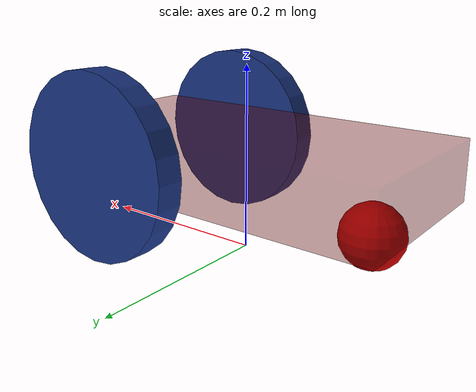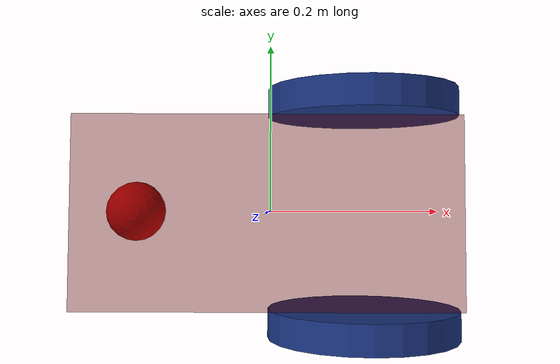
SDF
<?xml version='1.0'?>
<sdf version='1.6'>
  <model name='r2d2'>
    <link name='chassis'>
      <pose frame=''>0 -0 0.1 0 -0 0</pose>
      <inertial>
        <inertia>
          <ixx>0</ixx>
          <ixy>0</ixy>
          <ixz>0</ixz>
          <iyy>0</iyy>
          <iyz>0</iyz>
          <izz>0</izz>
        </inertia>
        <mass>0.641471</mass>
        <pose frame=''>0 0 0 0 -0 0</pose>
      </inertial>
      <self_collide>0</self_collide>
      <kinematic>0</kinematic>
      <gravity>1</gravity>
      <visual name='visual'>
        <geometry>
          <box>
            <size>0.4 0.2 0.066426</size>
          </box>
        </geometry>
        <pose frame=''>0 0 0 0 -0 0</pose>
        <cast_shadows>1</cast_shadows>
        <transparency>0</transparency>
        <material>
          <ambient>0.4 0 0 0.4</ambient>
          <diffuse>0.4 0 0 0.4</diffuse>
          <specular>0.4 0 0 0.4</specular>
          <emissive>0.4 0 0 0.4</emissive>
          <script>
            <name>ModelPreview_1::chassis::visual_MATERIAL_</name>
            <uri>__default__</uri>
          </script>
          <shader type='vertex'>
            <normal_map>__default__</normal_map>
          </shader>
        </material>
      </visual>
      <visual name='caster_visual'>
        <pose frame=''>-0.15 0 -0.05 0 -0 0</pose>
        <geometry>
          <sphere>
            <radius>0.0332131</radius>
          </sphere>
        </geometry>
        <cast_shadows>1</cast_shadows>
        <transparency>0</transparency>
        <material>
          <shader type='vertex'>
            <normal_map>__default__</normal_map>
          </shader>
          <ambient>0.8 0 0 0</ambient>
          <diffuse>0.8 0 0 0</diffuse>
          <specular>0.8 0 0 0</specular>
          <emissive>0.8 0 0 0</emissive>
          <script>
            <name>ModelPreview_4::chassis::caster_visual_MATERIAL_</name>
          </script>
        </material>
      </visual>
      <collision name='collision'>
        <laser_retro>0</laser_retro>
        <max_contacts>10</max_contacts>
        <pose frame=''>0 0 0 0 -0 0</pose>
        <geometry>
          <box>
            <size>0.4 0.2 0.066426</size>
          </box>
        </geometry>
        <surface>
          <friction>
            <ode>
              <mu>1</mu>
              <mu2>1</mu2>
              <fdir1>0 0 0</fdir1>
              <slip1>0</slip1>
              <slip2>0</slip2>
            </ode>
            <torsional>
              <coefficient>1</coefficient>
              <patch_radius>0</patch_radius>
              <surface_radius>0</surface_radius>
              <use_patch_radius>1</use_patch_radius>
              <ode>
                <slip>0</slip>
              </ode>
            </torsional>
          </friction>
          <bounce>
            <restitution_coefficient>0</restitution_coefficient>
            <threshold>1e+06</threshold>
          </bounce>
          <contact>
            <collide_without_contact>0</collide_without_contact>
            <collide_without_contact_bitmask>1</collide_without_contact_bitmask>
            <collide_bitmask>1</collide_bitmask>
            <ode>
              <soft_cfm>0</soft_cfm>
              <soft_erp>0.2</soft_erp>
              <kp>1e+13</kp>
              <kd>1</kd>
              <max_vel>0.01</max_vel>
              <min_depth>0</min_depth>
            </ode>
            <bullet>
              <split_impulse>1</split_impulse>
              <split_impulse_penetration_threshold>-0.01</split_impulse_penetration_threshold>
              <soft_cfm>0</soft_cfm>
              <soft_erp>0.2</soft_erp>
              <kp>1e+13</kp>
              <kd>1</kd>
            </bullet>
          </contact>
        </surface>
      </collision>
      <collision name='caster_collision'>
        <laser_retro>0</laser_retro>
        <max_contacts>10</max_contacts>
        <pose frame=''>-0.15 0 -0.05 0 -0 0</pose>
        <geometry>
          <sphere>
            <radius>0.033213</radius>
          </sphere>
        </geometry>
        <surface>
          <friction>
            <ode>
              <mu>0</mu>
              <mu2>0</mu2>
              <fdir1>0 0 0</fdir1>
              <slip1>1</slip1>
              <slip2>1</slip2>
            </ode>
            <torsional>
              <coefficient>1</coefficient>
              <patch_radius>0</patch_radius>
              <surface_radius>0</surface_radius>
              <use_patch_radius>1</use_patch_radius>
              <ode>
                <slip>0</slip>
              </ode>
            </torsional>
          </friction>
          <bounce>
            <restitution_coefficient>0</restitution_coefficient>
            <threshold>1e+06</threshold>
          </bounce>
          <contact>
            <collide_without_contact>0</collide_without_contact>
            <collide_without_contact_bitmask>1</collide_without_contact_bitmask>
            <collide_bitmask>1</collide_bitmask>
            <ode>
              <soft_cfm>0</soft_cfm>
              <soft_erp>0.2</soft_erp>
              <kp>1e+13</kp>
              <kd>1</kd>
              <max_vel>0.01</max_vel>
              <min_depth>0</min_depth>
            </ode>
            <bullet>
              <split_impulse>1</split_impulse>
              <split_impulse_penetration_threshold>-0.01</split_impulse_penetration_threshold>
              <soft_cfm>0</soft_cfm>
              <soft_erp>0.2</soft_erp>
              <kp>1e+13</kp>
              <kd>1</kd>
            </bullet>
          </contact>
        </surface>
      </collision>
    </link>
    <link name='left_wheel'>
      <pose frame=''>0.1 0.115 0.1 -0.00333 1.5707 1.56736</pose>
      <inertial>
        <inertia>
          <ixx>1</ixx>
          <ixy>0</ixy>
          <ixz>0</ixz>
          <iyy>1</iyy>
          <iyz>0</iyz>
          <izz>1</izz>
        </inertia>
        <mass>1</mass>
        <pose frame=''>0 0 0 0 -0 0</pose>
      </inertial>
      <self_collide>0</self_collide>
      <kinematic>0</kinematic>
      <visual name='visual_lw'>
        <geometry>
          <cylinder>
            <radius>0.1</radius>
            <length>0.03</length>
          </cylinder>
        </geometry>
        <pose frame=''>0 0 0 0 -0 0</pose>
        <cast_shadows>1</cast_shadows>
        <transparency>0</transparency>
        <material>
          <ambient>0.1 0.2 0.5 0</ambient>
          <diffuse>0.1 0.2 0.5 0</diffuse>
          <specular>0.1 0.2 0.5 0</specular>
          <emissive>0 0 0 1</emissive>
          <script>
            <name>ModelPreview_1::left_wheel::visual_lw_MATERIAL_</name>
            <uri>__default__</uri>
          </script>
          <shader type='vertex'>
            <normal_map>__default__</normal_map>
          </shader>
        </material>
      </visual>
      <collision name='collision_lw'>
        <laser_retro>0</laser_retro>
        <max_contacts>10</max_contacts>
        <pose frame=''>0 0 0 0 -0 0</pose>
        <geometry>
          <cylinder>
            <radius>0.1</radius>
            <length>0.03</length>
          </cylinder>
        </geometry>
        <surface>
          <friction>
            <ode>
              <mu>1</mu>
              <mu2>1</mu2>
              <fdir1>0 0 0</fdir1>
              <slip1>0</slip1>
              <slip2>0</slip2>
            </ode>
            <torsional>
              <coefficient>1</coefficient>
              <patch_radius>0</patch_radius>
              <surface_radius>0</surface_radius>
              <use_patch_radius>1</use_patch_radius>
              <ode>
                <slip>0</slip>
              </ode>
            </torsional>
          </friction>
          <bounce>
            <restitution_coefficient>0</restitution_coefficient>
            <threshold>1e+06</threshold>
          </bounce>
          <contact>
            <collide_without_contact>0</collide_without_contact>
            <collide_without_contact_bitmask>1</collide_without_contact_bitmask>
            <collide_bitmask>1</collide_bitmask>
            <ode>
              <soft_cfm>0</soft_cfm>
              <soft_erp>0.2</soft_erp>
              <kp>1e+13</kp>
              <kd>1</kd>
              <max_vel>0.01</max_vel>
              <min_depth>0</min_depth>
            </ode>
            <bullet>
              <split_impulse>1</split_impulse>
              <split_impulse_penetration_threshold>-0.01</split_impulse_penetration_threshold>
              <soft_cfm>0</soft_cfm>
              <soft_erp>0.2</soft_erp>
              <kp>1e+13</kp>
              <kd>1</kd>
            </bullet>
          </contact>
        </surface>
      </collision>
    </link>
    <link name='right_wheel'>
      <pose frame=''>0.1 -0.115 0.1 -0.004565 1.5707 1.56612</pose>
      <inertial>
        <inertia>
          <ixx>1</ixx>
          <ixy>0</ixy>
          <ixz>0</ixz>
          <iyy>1</iyy>
          <iyz>0</iyz>
          <izz>1</izz>
        </inertia>
        <mass>1</mass>
        <pose frame=''>0 0 0 0 -0 0</pose>
      </inertial>
      <self_collide>0</self_collide>
      <kinematic>0</kinematic>
      <visual name='visual_rw'>
        <geometry>
          <cylinder>
            <radius>0.1</radius>
            <length>0.03</length>
          </cylinder>
        </geometry>
        <pose frame=''>0 0 0 0 -0 0</pose>
        <cast_shadows>1</cast_shadows>
        <transparency>0</transparency>
        <material>
          <ambient>0.1 0.2 0.5 0</ambient>
          <diffuse>0.1 0.2 0.5 0</diffuse>
          <specular>0.1 0.2 0.5 0</specular>
          <emissive>0 0 0 1</emissive>
          <script>
            <name>ModelPreview_1::right_wheel::visual_rw_MATERIAL_</name>
            <uri>__default__</uri>
          </script>
          <shader type='vertex'>
            <normal_map>__default__</normal_map>
          </shader>
        </material>
      </visual>
      <collision name='collision_rw'>
        <laser_retro>0</laser_retro>
        <max_contacts>10</max_contacts>
        <pose frame=''>0 0 0 0 -0 0</pose>
        <geometry>
          <cylinder>
            <radius>0.1</radius>
            <length>0.03</length>
          </cylinder>
        </geometry>
        <surface>
          <friction>
            <ode>
              <mu>1</mu>
              <mu2>1</mu2>
              <fdir1>0 0 0</fdir1>
              <slip1>0</slip1>
              <slip2>0</slip2>
            </ode>
            <torsional>
              <coefficient>1</coefficient>
              <patch_radius>0</patch_radius>
              <surface_radius>0</surface_radius>
              <use_patch_radius>1</use_patch_radius>
              <ode>
                <slip>0</slip>
              </ode>
            </torsional>
          </friction>
          <bounce>
            <restitution_coefficient>0</restitution_coefficient>
            <threshold>1e+06</threshold>
          </bounce>
          <contact>
            <collide_without_contact>0</collide_without_contact>
            <collide_without_contact_bitmask>1</collide_without_contact_bitmask>
            <collide_bitmask>1</collide_bitmask>
            <ode>
              <soft_cfm>0</soft_cfm>
              <soft_erp>0.2</soft_erp>
              <kp>1e+13</kp>
              <kd>1</kd>
              <max_vel>0.01</max_vel>
              <min_depth>0</min_depth>
            </ode>
            <bullet>
              <split_impulse>1</split_impulse>
              <split_impulse_penetration_threshold>-0.01</split_impulse_penetration_threshold>
              <soft_cfm>0</soft_cfm>
              <soft_erp>0.2</soft_erp>
              <kp>1e+13</kp>
              <kd>1</kd>
            </bullet>
          </contact>
        </surface>
      </collision>
    </link>
    <joint name='lw_hinge' type='revolute'>
      <parent>chassis</parent>
      <child>left_wheel</child>
      <pose frame=''>0 0 -0.03 0 -0 0</pose>
      <axis>
        <xyz>0 1 0</xyz>
        <use_parent_model_frame>0</use_parent_model_frame>
        <limit>
          <lower>-1e+16</lower>
          <upper>1e+16</upper>
          <effort>-1</effort>
          <velocity>-1</velocity>
        </limit>
        <dynamics>
          <spring_reference>0</spring_reference>
          <spring_stiffness>0</spring_stiffness>
          <damping>0</damping>
          <friction>0</friction>
        </dynamics>
      </axis>
      <physics>
        <ode>
          <limit>
            <cfm>0</cfm>
            <erp>0.2</erp>
          </limit>
          <suspension>
            <cfm>0</cfm>
            <erp>0.2</erp>
          </suspension>
        </ode>
      </physics>
    </joint>
    <joint name='rw_hinge' type='revolute'>
      <parent>chassis</parent>
      <child>right_wheel</child>
      <pose frame=''>0 0 0.03 0 -0 0</pose>
      <axis>
        <xyz>0 1 0</xyz>
        <use_parent_model_frame>0</use_parent_model_frame>
        <limit>
          <lower>-1e+16</lower>
          <upper>1e+16</upper>
          <effort>-1</effort>
          <velocity>-1</velocity>
        </limit>
        <dynamics>
          <spring_reference>0</spring_reference>
          <spring_stiffness>0</spring_stiffness>
          <damping>0</damping>
          <friction>0</friction>
        </dynamics>
      </axis>
      <physics>
        <ode>
          <limit>
            <cfm>0</cfm>
            <erp>0.2</erp>
          </limit>
          <suspension>
            <cfm>0</cfm>
            <erp>0.2</erp>
          </suspension>
        </ode>
      </physics>
    </joint>
    <static>0</static>
    <allow_auto_disable>1</allow_auto_disable>
  </model>
</sdf>
